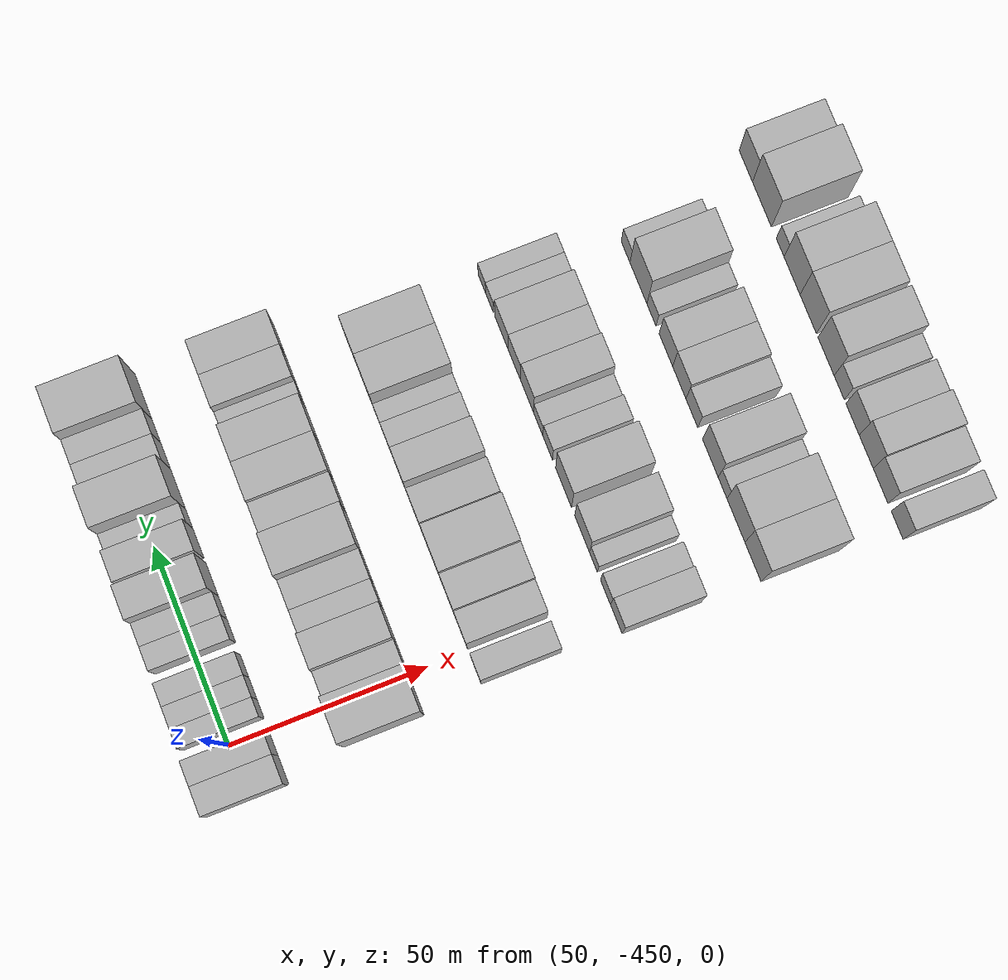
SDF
<sdf version="1.6">
 <world name="default">
  <model name="building_13">
   <static>1</static>
   <pose>50.0000 -460.0356 0 0.000000 0.000000 0.000000</pose>
   <link name="link">
    <pose>0 0 7.50 0 0 0</pose>
    <collision name="collision"><geometry><box><size>20.0000 7.2439 15.0000</size></box></geometry></collision>
    <visual name="visual">
     <cast_shadows>0</cast_shadows>
     <geometry><box><size>20.0000 7.2439 15.0000</size></box></geometry>
     <material>
      <script>
       <uri>model://HANNAS_wall/materials/scripts</uri>
       <uri>model://HANNAS_wall/materials/textures</uri>
       <name>vrc/HANNAS_wall</name>
      </script>
     </material>
    </visual>
   </link>
  </model>
  <model name="building_14">
   <static>1</static>
   <pose>50.0000 -453.3229 0 0.000000 0.000000 0.000000</pose>
   <link name="link">
    <pose>0 0 7.50 0 0 0</pose>
    <collision name="collision"><geometry><box><size>20.0000 6.1816 15.0000</size></box></geometry></collision>
    <visual name="visual">
     <cast_shadows>0</cast_shadows>
     <geometry><box><size>20.0000 6.1816 15.0000</size></box></geometry>
     <material>
      <script>
       <uri>model://HANNAS_wall/materials/scripts</uri>
       <uri>model://HANNAS_wall/materials/textures</uri>
       <name>vrc/HANNAS_wall</name>
      </script>
     </material>
    </visual>
   </link>
  </model>
  <model name="building_15">
   <static>1</static>
   <pose>50.0000 -444.8198 0 0.000000 0.000000 0.000000</pose>
   <link name="link">
    <pose>0 0 6.00 0 0 0</pose>
    <collision name="collision"><geometry><box><size>20.0000 4.8246 12.0000</size></box></geometry></collision>
    <visual name="visual">
     <cast_shadows>0</cast_shadows>
     <geometry><box><size>20.0000 4.8246 12.0000</size></box></geometry>
     <material>
      <script>
       <uri>model://HANNAS_wall/materials/scripts</uri>
       <uri>model://HANNAS_wall/materials/textures</uri>
       <name>vrc/HANNAS_wall</name>
      </script>
     </material>
    </visual>
   </link>
  </model>
  <model name="building_16">
   <static>1</static>
   <pose>50.0000 -439.6983 0 0.000000 0.000000 0.000000</pose>
   <link name="link">
    <pose>0 0 6.00 0 0 0</pose>
    <collision name="collision"><geometry><box><size>20.0000 5.4185 12.0000</size></box></geometry></collision>
    <visual name="visual">
     <cast_shadows>0</cast_shadows>
     <geometry><box><size>20.0000 5.4185 12.0000</size></box></geometry>
     <material>
      <script>
       <uri>model://HANNAS_wall/materials/scripts</uri>
       <uri>model://HANNAS_wall/materials/textures</uri>
       <name>vrc/HANNAS_wall</name>
      </script>
     </material>
    </visual>
   </link>
  </model>
  <model name="building_17">
   <static>1</static>
   <pose>50.0000 -434.1179 0 0.000000 0.000000 0.000000</pose>
   <link name="link">
    <pose>0 0 6.00 0 0 0</pose>
    <collision name="collision"><geometry><box><size>20.0000 5.7422 12.0000</size></box></geometry></collision>
    <visual name="visual">
     <cast_shadows>0</cast_shadows>
     <geometry><box><size>20.0000 5.7422 12.0000</size></box></geometry>
     <material>
      <script>
       <uri>model://HANNAS_wall/materials/scripts</uri>
       <uri>model://HANNAS_wall/materials/textures</uri>
       <name>vrc/HANNAS_wall</name>
      </script>
     </material>
    </visual>
   </link>
  </model>
  <model name="building_18">
   <static>1</static>
   <pose>50.0000 -425.2668 0 0.000000 0.000000 0.000000</pose>
   <link name="link">
    <pose>0 0 6.00 0 0 0</pose>
    <collision name="collision"><geometry><box><size>20.0000 5.9600 12.0000</size></box></geometry></collision>
    <visual name="visual">
     <cast_shadows>0</cast_shadows>
     <geometry><box><size>20.0000 5.9600 12.0000</size></box></geometry>
     <material>
      <script>
       <uri>model://HANNAS_wall/materials/scripts</uri>
       <uri>model://HANNAS_wall/materials/textures</uri>
       <name>vrc/HANNAS_wall</name>
      </script>
     </material>
    </visual>
   </link>
  </model>
  <model name="building_19">
   <static>1</static>
   <pose>50.0000 -419.3706 0 0.000000 0.000000 0.000000</pose>
   <link name="link">
    <pose>0 0 6.00 0 0 0</pose>
    <collision name="collision"><geometry><box><size>20.0000 5.8324 12.0000</size></box></geometry></collision>
    <visual name="visual">
     <cast_shadows>0</cast_shadows>
     <geometry><box><size>20.0000 5.8324 12.0000</size></box></geometry>
     <material>
      <script>
       <uri>model://HANNAS_wall/materials/scripts</uri>
       <uri>model://HANNAS_wall/materials/textures</uri>
       <name>vrc/HANNAS_wall</name>
      </script>
     </material>
    </visual>
   </link>
  </model>
  <model name="building_20">
   <static>1</static>
   <pose>50.0000 -412.1958 0 0.000000 0.000000 0.000000</pose>
   <link name="link">
    <pose>0 0 10.50 0 0 0</pose>
    <collision name="collision"><geometry><box><size>20.0000 8.5172 21.0000</size></box></geometry></collision>
    <visual name="visual">
     <cast_shadows>0</cast_shadows>
     <geometry><box><size>20.0000 8.5172 21.0000</size></box></geometry>
     <material>
      <script>
       <uri>model://HANNAS_wall/materials/scripts</uri>
       <uri>model://HANNAS_wall/materials/textures</uri>
       <name>vrc/HANNAS_wall</name>
      </script>
     </material>
    </visual>
   </link>
  </model>
  <model name="building_21">
   <static>1</static>
   <pose>50.0000 -403.0719 0 0.000000 0.000000 0.000000</pose>
   <link name="link">
    <pose>0 0 9.00 0 0 0</pose>
    <collision name="collision"><geometry><box><size>20.0000 7.7307 18.0000</size></box></geometry></collision>
    <visual name="visual">
     <cast_shadows>0</cast_shadows>
     <geometry><box><size>20.0000 7.7307 18.0000</size></box></geometry>
     <material>
      <script>
       <uri>model://HANNAS_wall/materials/scripts</uri>
       <uri>model://HANNAS_wall/materials/textures</uri>
       <name>vrc/HANNAS_wall</name>
      </script>
     </material>
    </visual>
   </link>
  </model>
  <model name="building_22">
   <static>1</static>
   <pose>50.0000 -396.7877 0 0.000000 0.000000 0.000000</pose>
   <link name="link">
    <pose>0 0 6.00 0 0 0</pose>
    <collision name="collision"><geometry><box><size>20.0000 4.8377 12.0000</size></box></geometry></collision>
    <visual name="visual">
     <cast_shadows>0</cast_shadows>
     <geometry><box><size>20.0000 4.8377 12.0000</size></box></geometry>
     <material>
      <script>
       <uri>model://HANNAS_wall/materials/scripts</uri>
       <uri>model://HANNAS_wall/materials/textures</uri>
       <name>vrc/HANNAS_wall</name>
      </script>
     </material>
    </visual>
   </link>
  </model>
  <model name="building_23">
   <static>1</static>
   <pose>50.0000 -389.2605 0 0.000000 0.000000 0.000000</pose>
   <link name="link">
    <pose>0 0 12.00 0 0 0</pose>
    <collision name="collision"><geometry><box><size>20.0000 10.2167 24.0000</size></box></geometry></collision>
    <visual name="visual">
     <cast_shadows>0</cast_shadows>
     <geometry><box><size>20.0000 10.2167 24.0000</size></box></geometry>
     <material>
      <script>
       <uri>model://HANNAS_wall/materials/scripts</uri>
       <uri>model://HANNAS_wall/materials/textures</uri>
       <name>vrc/HANNAS_wall</name>
      </script>
     </material>
    </visual>
   </link>
  </model>
  <model name="building_24">
   <static>1</static>
   <pose>50.0000 -380.7902 0 0.000000 0.000000 0.000000</pose>
   <link name="link">
    <pose>0 0 7.50 0 0 0</pose>
    <collision name="collision"><geometry><box><size>20.0000 6.7239 15.0000</size></box></geometry></collision>
    <visual name="visual">
     <cast_shadows>0</cast_shadows>
     <geometry><box><size>20.0000 6.7239 15.0000</size></box></geometry>
     <material>
      <script>
       <uri>model://HANNAS_wall/materials/scripts</uri>
       <uri>model://HANNAS_wall/materials/textures</uri>
       <name>vrc/HANNAS_wall</name>
      </script>
     </material>
    </visual>
   </link>
  </model>
  <model name="building_25">
   <static>1</static>
   <pose>50.0000 -374.2850 0 0.000000 0.000000 0.000000</pose>
   <link name="link">
    <pose>0 0 7.50 0 0 0</pose>
    <collision name="collision"><geometry><box><size>20.0000 6.2863 15.0000</size></box></geometry></collision>
    <visual name="visual">
     <cast_shadows>0</cast_shadows>
     <geometry><box><size>20.0000 6.2863 15.0000</size></box></geometry>
     <material>
      <script>
       <uri>model://HANNAS_wall/materials/scripts</uri>
       <uri>model://HANNAS_wall/materials/textures</uri>
       <name>vrc/HANNAS_wall</name>
      </script>
     </material>
    </visual>
   </link>
  </model>
  <model name="building_26">
   <static>1</static>
   <pose>50.0000 -365.3331 0 0.000000 0.000000 0.000000</pose>
   <link name="link">
    <pose>0 0 12.00 0 0 0</pose>
    <collision name="collision"><geometry><box><size>20.0000 11.6175 24.0000</size></box></geometry></collision>
    <visual name="visual">
     <cast_shadows>0</cast_shadows>
     <geometry><box><size>20.0000 11.6175 24.0000</size></box></geometry>
     <material>
      <script>
       <uri>model://HANNAS_wall/materials/scripts</uri>
       <uri>model://HANNAS_wall/materials/textures</uri>
       <name>vrc/HANNAS_wall</name>
      </script>
     </material>
    </visual>
   </link>
  </model>
  <model name="building_132">
   <static>1</static>
   <pose>85.0000 -454.5503 0 0.000000 0.000000 0.000000</pose>
   <link name="link">
    <pose>0 0 12.00 0 0 0</pose>
    <collision name="collision"><geometry><box><size>20.0000 11.3435 24.0000</size></box></geometry></collision>
    <visual name="visual">
     <cast_shadows>0</cast_shadows>
     <geometry><box><size>20.0000 11.3435 24.0000</size></box></geometry>
     <material>
      <script>
       <uri>model://HANNAS_wall/materials/scripts</uri>
       <uri>model://HANNAS_wall/materials/textures</uri>
       <name>vrc/HANNAS_wall</name>
      </script>
     </material>
    </visual>
   </link>
  </model>
  <model name="building_133">
   <static>1</static>
   <pose>85.0000 -445.5842 0 0.000000 0.000000 0.000000</pose>
   <link name="link">
    <pose>0 0 7.50 0 0 0</pose>
    <collision name="collision"><geometry><box><size>20.0000 6.5887 15.0000</size></box></geometry></collision>
    <visual name="visual">
     <cast_shadows>0</cast_shadows>
     <geometry><box><size>20.0000 6.5887 15.0000</size></box></geometry>
     <material>
      <script>
       <uri>model://HANNAS_wall/materials/scripts</uri>
       <uri>model://HANNAS_wall/materials/textures</uri>
       <name>vrc/HANNAS_wall</name>
      </script>
     </material>
    </visual>
   </link>
  </model>
  <model name="building_134">
   <static>1</static>
   <pose>85.0000 -437.9200 0 0.000000 0.000000 0.000000</pose>
   <link name="link">
    <pose>0 0 10.50 0 0 0</pose>
    <collision name="collision"><geometry><box><size>20.0000 8.7396 21.0000</size></box></geometry></collision>
    <visual name="visual">
     <cast_shadows>0</cast_shadows>
     <geometry><box><size>20.0000 8.7396 21.0000</size></box></geometry>
     <material>
      <script>
       <uri>model://HANNAS_wall/materials/scripts</uri>
       <uri>model://HANNAS_wall/materials/textures</uri>
       <name>vrc/HANNAS_wall</name>
      </script>
     </material>
    </visual>
   </link>
  </model>
  <model name="building_135">
   <static>1</static>
   <pose>85.0000 -430.4284 0 0.000000 0.000000 0.000000</pose>
   <link name="link">
    <pose>0 0 7.50 0 0 0</pose>
    <collision name="collision"><geometry><box><size>20.0000 6.2436 15.0000</size></box></geometry></collision>
    <visual name="visual">
     <cast_shadows>0</cast_shadows>
     <geometry><box><size>20.0000 6.2436 15.0000</size></box></geometry>
     <material>
      <script>
       <uri>model://HANNAS_wall/materials/scripts</uri>
       <uri>model://HANNAS_wall/materials/textures</uri>
       <name>vrc/HANNAS_wall</name>
      </script>
     </material>
    </visual>
   </link>
  </model>
  <model name="building_136">
   <static>1</static>
   <pose>85.0000 -423.5765 0 0.000000 0.000000 0.000000</pose>
   <link name="link">
    <pose>0 0 7.50 0 0 0</pose>
    <collision name="collision"><geometry><box><size>20.0000 7.4602 15.0000</size></box></geometry></collision>
    <visual name="visual">
     <cast_shadows>0</cast_shadows>
     <geometry><box><size>20.0000 7.4602 15.0000</size></box></geometry>
     <material>
      <script>
       <uri>model://HANNAS_wall/materials/scripts</uri>
       <uri>model://HANNAS_wall/materials/textures</uri>
       <name>vrc/HANNAS_wall</name>
      </script>
     </material>
    </visual>
   </link>
  </model>
  <model name="building_137">
   <static>1</static>
   <pose>85.0000 -414.6378 0 0.000000 0.000000 0.000000</pose>
   <link name="link">
    <pose>0 0 12.00 0 0 0</pose>
    <collision name="collision"><geometry><box><size>20.0000 10.4172 24.0000</size></box></geometry></collision>
    <visual name="visual">
     <cast_shadows>0</cast_shadows>
     <geometry><box><size>20.0000 10.4172 24.0000</size></box></geometry>
     <material>
      <script>
       <uri>model://HANNAS_wall/materials/scripts</uri>
       <uri>model://HANNAS_wall/materials/textures</uri>
       <name>vrc/HANNAS_wall</name>
      </script>
     </material>
    </visual>
   </link>
  </model>
  <model name="building_138">
   <static>1</static>
   <pose>85.0000 -405.3037 0 0.000000 0.000000 0.000000</pose>
   <link name="link">
    <pose>0 0 9.00 0 0 0</pose>
    <collision name="collision"><geometry><box><size>20.0000 8.2510 18.0000</size></box></geometry></collision>
    <visual name="visual">
     <cast_shadows>0</cast_shadows>
     <geometry><box><size>20.0000 8.2510 18.0000</size></box></geometry>
     <material>
      <script>
       <uri>model://HANNAS_wall/materials/scripts</uri>
       <uri>model://HANNAS_wall/materials/textures</uri>
       <name>vrc/HANNAS_wall</name>
      </script>
     </material>
    </visual>
   </link>
  </model>
  <model name="building_139">
   <static>1</static>
   <pose>85.0000 -396.3277 0 0.000000 0.000000 0.000000</pose>
   <link name="link">
    <pose>0 0 10.50 0 0 0</pose>
    <collision name="collision"><geometry><box><size>20.0000 9.7009 21.0000</size></box></geometry></collision>
    <visual name="visual">
     <cast_shadows>0</cast_shadows>
     <geometry><box><size>20.0000 9.7009 21.0000</size></box></geometry>
     <material>
      <script>
       <uri>model://HANNAS_wall/materials/scripts</uri>
       <uri>model://HANNAS_wall/materials/textures</uri>
       <name>vrc/HANNAS_wall</name>
      </script>
     </material>
    </visual>
   </link>
  </model>
  <model name="building_140">
   <static>1</static>
   <pose>85.0000 -386.8319 0 0.000000 0.000000 0.000000</pose>
   <link name="link">
    <pose>0 0 10.50 0 0 0</pose>
    <collision name="collision"><geometry><box><size>20.0000 9.2907 21.0000</size></box></geometry></collision>
    <visual name="visual">
     <cast_shadows>0</cast_shadows>
     <geometry><box><size>20.0000 9.2907 21.0000</size></box></geometry>
     <material>
      <script>
       <uri>model://HANNAS_wall/materials/scripts</uri>
       <uri>model://HANNAS_wall/materials/textures</uri>
       <name>vrc/HANNAS_wall</name>
      </script>
     </material>
    </visual>
   </link>
  </model>
  <model name="building_141">
   <static>1</static>
   <pose>85.0000 -379.7741 0 0.000000 0.000000 0.000000</pose>
   <link name="link">
    <pose>0 0 6.00 0 0 0</pose>
    <collision name="collision"><geometry><box><size>20.0000 4.8249 12.0000</size></box></geometry></collision>
    <visual name="visual">
     <cast_shadows>0</cast_shadows>
     <geometry><box><size>20.0000 4.8249 12.0000</size></box></geometry>
     <material>
      <script>
       <uri>model://HANNAS_wall/materials/scripts</uri>
       <uri>model://HANNAS_wall/materials/textures</uri>
       <name>vrc/HANNAS_wall</name>
      </script>
     </material>
    </visual>
   </link>
  </model>
  <model name="building_142">
   <static>1</static>
   <pose>85.0000 -373.2698 0 0.000000 0.000000 0.000000</pose>
   <link name="link">
    <pose>0 0 9.00 0 0 0</pose>
    <collision name="collision"><geometry><box><size>20.0000 8.1838 18.0000</size></box></geometry></collision>
    <visual name="visual">
     <cast_shadows>0</cast_shadows>
     <geometry><box><size>20.0000 8.1838 18.0000</size></box></geometry>
     <material>
      <script>
       <uri>model://HANNAS_wall/materials/scripts</uri>
       <uri>model://HANNAS_wall/materials/textures</uri>
       <name>vrc/HANNAS_wall</name>
      </script>
     </material>
    </visual>
   </link>
  </model>
  <model name="building_143">
   <static>1</static>
   <pose>85.0000 -364.7942 0 0.000000 0.000000 0.000000</pose>
   <link name="link">
    <pose>0 0 9.00 0 0 0</pose>
    <collision name="collision"><geometry><box><size>20.0000 8.7674 18.0000</size></box></geometry></collision>
    <visual name="visual">
     <cast_shadows>0</cast_shadows>
     <geometry><box><size>20.0000 8.7674 18.0000</size></box></geometry>
     <material>
      <script>
       <uri>model://HANNAS_wall/materials/scripts</uri>
       <uri>model://HANNAS_wall/materials/textures</uri>
       <name>vrc/HANNAS_wall</name>
      </script>
     </material>
    </visual>
   </link>
  </model>
  <model name="building_268">
   <static>1</static>
   <pose>120.0000 -454.9686 0 0.000000 0.000000 0.000000</pose>
   <link name="link">
    <pose>0 0 7.50 0 0 0</pose>
    <collision name="collision"><geometry><box><size>20.0000 6.7234 15.0000</size></box></geometry></collision>
    <visual name="visual">
     <cast_shadows>0</cast_shadows>
     <geometry><box><size>20.0000 6.7234 15.0000</size></box></geometry>
     <material>
      <script>
       <uri>model://HANNAS_wall/materials/scripts</uri>
       <uri>model://HANNAS_wall/materials/textures</uri>
       <name>vrc/HANNAS_wall</name>
      </script>
     </material>
    </visual>
   </link>
  </model>
  <model name="building_269">
   <static>1</static>
   <pose>120.0000 -445.6017 0 0.000000 0.000000 0.000000</pose>
   <link name="link">
    <pose>0 0 9.00 0 0 0</pose>
    <collision name="collision"><geometry><box><size>20.0000 8.0104 18.0000</size></box></geometry></collision>
    <visual name="visual">
     <cast_shadows>0</cast_shadows>
     <geometry><box><size>20.0000 8.0104 18.0000</size></box></geometry>
     <material>
      <script>
       <uri>model://HANNAS_wall/materials/scripts</uri>
       <uri>model://HANNAS_wall/materials/textures</uri>
       <name>vrc/HANNAS_wall</name>
      </script>
     </material>
    </visual>
   </link>
  </model>
  <model name="building_270">
   <static>1</static>
   <pose>120.0000 -437.1428 0 0.000000 0.000000 0.000000</pose>
   <link name="link">
    <pose>0 0 10.50 0 0 0</pose>
    <collision name="collision"><geometry><box><size>20.0000 8.9074 21.0000</size></box></geometry></collision>
    <visual name="visual">
     <cast_shadows>0</cast_shadows>
     <geometry><box><size>20.0000 8.9074 21.0000</size></box></geometry>
     <material>
      <script>
       <uri>model://HANNAS_wall/materials/scripts</uri>
       <uri>model://HANNAS_wall/materials/textures</uri>
       <name>vrc/HANNAS_wall</name>
      </script>
     </material>
    </visual>
   </link>
  </model>
  <model name="building_271">
   <static>1</static>
   <pose>120.0000 -426.8157 0 0.000000 0.000000 0.000000</pose>
   <link name="link">
    <pose>0 0 12.00 0 0 0</pose>
    <collision name="collision"><geometry><box><size>20.0000 11.7467 24.0000</size></box></geometry></collision>
    <visual name="visual">
     <cast_shadows>0</cast_shadows>
     <geometry><box><size>20.0000 11.7467 24.0000</size></box></geometry>
     <material>
      <script>
       <uri>model://HANNAS_wall/materials/scripts</uri>
       <uri>model://HANNAS_wall/materials/textures</uri>
       <name>vrc/HANNAS_wall</name>
      </script>
     </material>
    </visual>
   </link>
  </model>
  <model name="building_272">
   <static>1</static>
   <pose>120.0000 -415.6219 0 0.000000 0.000000 0.000000</pose>
   <link name="link">
    <pose>0 0 9.00 0 0 0</pose>
    <collision name="collision"><geometry><box><size>20.0000 8.6409 18.0000</size></box></geometry></collision>
    <visual name="visual">
     <cast_shadows>0</cast_shadows>
     <geometry><box><size>20.0000 8.6409 18.0000</size></box></geometry>
     <material>
      <script>
       <uri>model://HANNAS_wall/materials/scripts</uri>
       <uri>model://HANNAS_wall/materials/textures</uri>
       <name>vrc/HANNAS_wall</name>
      </script>
     </material>
    </visual>
   </link>
  </model>
  <model name="building_273">
   <static>1</static>
   <pose>120.0000 -405.9584 0 0.000000 0.000000 0.000000</pose>
   <link name="link">
    <pose>0 0 10.50 0 0 0</pose>
    <collision name="collision"><geometry><box><size>20.0000 8.6862 21.0000</size></box></geometry></collision>
    <visual name="visual">
     <cast_shadows>0</cast_shadows>
     <geometry><box><size>20.0000 8.6862 21.0000</size></box></geometry>
     <material>
      <script>
       <uri>model://HANNAS_wall/materials/scripts</uri>
       <uri>model://HANNAS_wall/materials/textures</uri>
       <name>vrc/HANNAS_wall</name>
      </script>
     </material>
    </visual>
   </link>
  </model>
  <model name="building_274">
   <static>1</static>
   <pose>120.0000 -398.0252 0 0.000000 0.000000 0.000000</pose>
   <link name="link">
    <pose>0 0 7.50 0 0 0</pose>
    <collision name="collision"><geometry><box><size>20.0000 7.1802 15.0000</size></box></geometry></collision>
    <visual name="visual">
     <cast_shadows>0</cast_shadows>
     <geometry><box><size>20.0000 7.1802 15.0000</size></box></geometry>
     <material>
      <script>
       <uri>model://HANNAS_wall/materials/scripts</uri>
       <uri>model://HANNAS_wall/materials/textures</uri>
       <name>vrc/HANNAS_wall</name>
      </script>
     </material>
    </visual>
   </link>
  </model>
  <model name="building_275">
   <static>1</static>
   <pose>120.0000 -391.7804 0 0.000000 0.000000 0.000000</pose>
   <link name="link">
    <pose>0 0 6.00 0 0 0</pose>
    <collision name="collision"><geometry><box><size>20.0000 5.3094 12.0000</size></box></geometry></collision>
    <visual name="visual">
     <cast_shadows>0</cast_shadows>
     <geometry><box><size>20.0000 5.3094 12.0000</size></box></geometry>
     <material>
      <script>
       <uri>model://HANNAS_wall/materials/scripts</uri>
       <uri>model://HANNAS_wall/materials/textures</uri>
       <name>vrc/HANNAS_wall</name>
      </script>
     </material>
    </visual>
   </link>
  </model>
  <model name="building_276">
   <static>1</static>
   <pose>120.0000 -384.0562 0 0.000000 0.000000 0.000000</pose>
   <link name="link">
    <pose>0 0 12.00 0 0 0</pose>
    <collision name="collision"><geometry><box><size>20.0000 10.1391 24.0000</size></box></geometry></collision>
    <visual name="visual">
     <cast_shadows>0</cast_shadows>
     <geometry><box><size>20.0000 10.1391 24.0000</size></box></geometry>
     <material>
      <script>
       <uri>model://HANNAS_wall/materials/scripts</uri>
       <uri>model://HANNAS_wall/materials/textures</uri>
       <name>vrc/HANNAS_wall</name>
      </script>
     </material>
    </visual>
   </link>
  </model>
  <model name="building_277">
   <static>1</static>
   <pose>120.0000 -374.1799 0 0.000000 0.000000 0.000000</pose>
   <link name="link">
    <pose>0 0 12.00 0 0 0</pose>
    <collision name="collision"><geometry><box><size>20.0000 9.6134 24.0000</size></box></geometry></collision>
    <visual name="visual">
     <cast_shadows>0</cast_shadows>
     <geometry><box><size>20.0000 9.6134 24.0000</size></box></geometry>
     <material>
      <script>
       <uri>model://HANNAS_wall/materials/scripts</uri>
       <uri>model://HANNAS_wall/materials/textures</uri>
       <name>vrc/HANNAS_wall</name>
      </script>
     </material>
    </visual>
   </link>
  </model>
  <model name="building_395">
   <static>1</static>
   <pose>155.0000 -455.8413 0 0.000000 0.000000 0.000000</pose>
   <link name="link">
    <pose>0 0 9.00 0 0 0</pose>
    <collision name="collision"><geometry><box><size>20.0000 7.2951 18.0000</size></box></geometry></collision>
    <visual name="visual">
     <cast_shadows>0</cast_shadows>
     <geometry><box><size>20.0000 7.2951 18.0000</size></box></geometry>
     <material>
      <script>
       <uri>model://HANNAS_wall/materials/scripts</uri>
       <uri>model://HANNAS_wall/materials/textures</uri>
       <name>vrc/HANNAS_wall</name>
      </script>
     </material>
    </visual>
   </link>
  </model>
  <model name="building_396">
   <static>1</static>
   <pose>155.0000 -449.0101 0 0.000000 0.000000 0.000000</pose>
   <link name="link">
    <pose>0 0 7.50 0 0 0</pose>
    <collision name="collision"><geometry><box><size>20.0000 6.3673 15.0000</size></box></geometry></collision>
    <visual name="visual">
     <cast_shadows>0</cast_shadows>
     <geometry><box><size>20.0000 6.3673 15.0000</size></box></geometry>
     <material>
      <script>
       <uri>model://HANNAS_wall/materials/scripts</uri>
       <uri>model://HANNAS_wall/materials/textures</uri>
       <name>vrc/HANNAS_wall</name>
      </script>
     </material>
    </visual>
   </link>
  </model>
  <model name="building_397">
   <static>1</static>
   <pose>155.0000 -441.3222 0 0.000000 0.000000 0.000000</pose>
   <link name="link">
    <pose>0 0 6.00 0 0 0</pose>
    <collision name="collision"><geometry><box><size>20.0000 5.0085 12.0000</size></box></geometry></collision>
    <visual name="visual">
     <cast_shadows>0</cast_shadows>
     <geometry><box><size>20.0000 5.0085 12.0000</size></box></geometry>
     <material>
      <script>
       <uri>model://HANNAS_wall/materials/scripts</uri>
       <uri>model://HANNAS_wall/materials/textures</uri>
       <name>vrc/HANNAS_wall</name>
      </script>
     </material>
    </visual>
   </link>
  </model>
  <model name="building_398">
   <static>1</static>
   <pose>155.0000 -434.1032 0 0.000000 0.000000 0.000000</pose>
   <link name="link">
    <pose>0 0 10.50 0 0 0</pose>
    <collision name="collision"><geometry><box><size>20.0000 9.4295 21.0000</size></box></geometry></collision>
    <visual name="visual">
     <cast_shadows>0</cast_shadows>
     <geometry><box><size>20.0000 9.4295 21.0000</size></box></geometry>
     <material>
      <script>
       <uri>model://HANNAS_wall/materials/scripts</uri>
       <uri>model://HANNAS_wall/materials/textures</uri>
       <name>vrc/HANNAS_wall</name>
      </script>
     </material>
    </visual>
   </link>
  </model>
  <model name="building_399">
   <static>1</static>
   <pose>155.0000 -422.2895 0 0.000000 0.000000 0.000000</pose>
   <link name="link">
    <pose>0 0 12.00 0 0 0</pose>
    <collision name="collision"><geometry><box><size>20.0000 10.1981 24.0000</size></box></geometry></collision>
    <visual name="visual">
     <cast_shadows>0</cast_shadows>
     <geometry><box><size>20.0000 10.1981 24.0000</size></box></geometry>
     <material>
      <script>
       <uri>model://HANNAS_wall/materials/scripts</uri>
       <uri>model://HANNAS_wall/materials/textures</uri>
       <name>vrc/HANNAS_wall</name>
      </script>
     </material>
    </visual>
   </link>
  </model>
  <model name="building_400">
   <static>1</static>
   <pose>155.0000 -412.1031 0 0.000000 0.000000 0.000000</pose>
   <link name="link">
    <pose>0 0 7.50 0 0 0</pose>
    <collision name="collision"><geometry><box><size>20.0000 6.1747 15.0000</size></box></geometry></collision>
    <visual name="visual">
     <cast_shadows>0</cast_shadows>
     <geometry><box><size>20.0000 6.1747 15.0000</size></box></geometry>
     <material>
      <script>
       <uri>model://HANNAS_wall/materials/scripts</uri>
       <uri>model://HANNAS_wall/materials/textures</uri>
       <name>vrc/HANNAS_wall</name>
      </script>
     </material>
    </visual>
   </link>
  </model>
  <model name="building_401">
   <static>1</static>
   <pose>155.0000 -406.0299 0 0.000000 0.000000 0.000000</pose>
   <link name="link">
    <pose>0 0 6.00 0 0 0</pose>
    <collision name="collision"><geometry><box><size>20.0000 5.9715 12.0000</size></box></geometry></collision>
    <visual name="visual">
     <cast_shadows>0</cast_shadows>
     <geometry><box><size>20.0000 5.9715 12.0000</size></box></geometry>
     <material>
      <script>
       <uri>model://HANNAS_wall/materials/scripts</uri>
       <uri>model://HANNAS_wall/materials/textures</uri>
       <name>vrc/HANNAS_wall</name>
      </script>
     </material>
    </visual>
   </link>
  </model>
  <model name="building_402">
   <static>1</static>
   <pose>155.0000 -398.8384 0 0.000000 0.000000 0.000000</pose>
   <link name="link">
    <pose>0 0 10.50 0 0 0</pose>
    <collision name="collision"><geometry><box><size>20.0000 8.4115 21.0000</size></box></geometry></collision>
    <visual name="visual">
     <cast_shadows>0</cast_shadows>
     <geometry><box><size>20.0000 8.4115 21.0000</size></box></geometry>
     <material>
      <script>
       <uri>model://HANNAS_wall/materials/scripts</uri>
       <uri>model://HANNAS_wall/materials/textures</uri>
       <name>vrc/HANNAS_wall</name>
      </script>
     </material>
    </visual>
   </link>
  </model>
  <model name="building_403">
   <static>1</static>
   <pose>155.0000 -390.6266 0 0.000000 0.000000 0.000000</pose>
   <link name="link">
    <pose>0 0 9.00 0 0 0</pose>
    <collision name="collision"><geometry><box><size>20.0000 8.0121 18.0000</size></box></geometry></collision>
    <visual name="visual">
     <cast_shadows>0</cast_shadows>
     <geometry><box><size>20.0000 8.0121 18.0000</size></box></geometry>
     <material>
      <script>
       <uri>model://HANNAS_wall/materials/scripts</uri>
       <uri>model://HANNAS_wall/materials/textures</uri>
       <name>vrc/HANNAS_wall</name>
      </script>
     </material>
    </visual>
   </link>
  </model>
  <model name="building_404">
   <static>1</static>
   <pose>155.0000 -382.2199 0 0.000000 0.000000 0.000000</pose>
   <link name="link">
    <pose>0 0 9.00 0 0 0</pose>
    <collision name="collision"><geometry><box><size>20.0000 8.8012 18.0000</size></box></geometry></collision>
    <visual name="visual">
     <cast_shadows>0</cast_shadows>
     <geometry><box><size>20.0000 8.8012 18.0000</size></box></geometry>
     <material>
      <script>
       <uri>model://HANNAS_wall/materials/scripts</uri>
       <uri>model://HANNAS_wall/materials/textures</uri>
       <name>vrc/HANNAS_wall</name>
      </script>
     </material>
    </visual>
   </link>
  </model>
  <model name="building_405">
   <static>1</static>
   <pose>155.0000 -374.3476 0 0.000000 0.000000 0.000000</pose>
   <link name="link">
    <pose>0 0 6.00 0 0 0</pose>
    <collision name="collision"><geometry><box><size>20.0000 4.9435 12.0000</size></box></geometry></collision>
    <visual name="visual">
     <cast_shadows>0</cast_shadows>
     <geometry><box><size>20.0000 4.9435 12.0000</size></box></geometry>
     <material>
      <script>
       <uri>model://HANNAS_wall/materials/scripts</uri>
       <uri>model://HANNAS_wall/materials/textures</uri>
       <name>vrc/HANNAS_wall</name>
      </script>
     </material>
    </visual>
   </link>
  </model>
  <model name="building_406">
   <static>1</static>
   <pose>155.0000 -369.3794 0 0.000000 0.000000 0.000000</pose>
   <link name="link">
    <pose>0 0 6.00 0 0 0</pose>
    <collision name="collision"><geometry><box><size>20.0000 4.9929 12.0000</size></box></geometry></collision>
    <visual name="visual">
     <cast_shadows>0</cast_shadows>
     <geometry><box><size>20.0000 4.9929 12.0000</size></box></geometry>
     <material>
      <script>
       <uri>model://HANNAS_wall/materials/scripts</uri>
       <uri>model://HANNAS_wall/materials/textures</uri>
       <name>vrc/HANNAS_wall</name>
      </script>
     </material>
    </visual>
   </link>
  </model>
  <model name="building_523">
   <static>1</static>
   <pose>190.0000 -455.1067 0 0.000000 0.000000 0.000000</pose>
   <link name="link">
    <pose>0 0 12.00 0 0 0</pose>
    <collision name="collision"><geometry><box><size>20.0000 9.9626 24.0000</size></box></geometry></collision>
    <visual name="visual">
     <cast_shadows>0</cast_shadows>
     <geometry><box><size>20.0000 9.9626 24.0000</size></box></geometry>
     <material>
      <script>
       <uri>model://HANNAS_wall/materials/scripts</uri>
       <uri>model://HANNAS_wall/materials/textures</uri>
       <name>vrc/HANNAS_wall</name>
      </script>
     </material>
    </visual>
   </link>
  </model>
  <model name="building_524">
   <static>1</static>
   <pose>190.0000 -444.5082 0 0.000000 0.000000 0.000000</pose>
   <link name="link">
    <pose>0 0 12.00 0 0 0</pose>
    <collision name="collision"><geometry><box><size>20.0000 11.2344 24.0000</size></box></geometry></collision>
    <visual name="visual">
     <cast_shadows>0</cast_shadows>
     <geometry><box><size>20.0000 11.2344 24.0000</size></box></geometry>
     <material>
      <script>
       <uri>model://HANNAS_wall/materials/scripts</uri>
       <uri>model://HANNAS_wall/materials/textures</uri>
       <name>vrc/HANNAS_wall</name>
      </script>
     </material>
    </visual>
   </link>
  </model>
  <model name="building_525">
   <static>1</static>
   <pose>190.0000 -436.1556 0 0.000000 0.000000 0.000000</pose>
   <link name="link">
    <pose>0 0 6.00 0 0 0</pose>
    <collision name="collision"><geometry><box><size>20.0000 5.4707 12.0000</size></box></geometry></collision>
    <visual name="visual">
     <cast_shadows>0</cast_shadows>
     <geometry><box><size>20.0000 5.4707 12.0000</size></box></geometry>
     <material>
      <script>
       <uri>model://HANNAS_wall/materials/scripts</uri>
       <uri>model://HANNAS_wall/materials/textures</uri>
       <name>vrc/HANNAS_wall</name>
      </script>
     </material>
    </visual>
   </link>
  </model>
  <model name="building_526">
   <static>1</static>
   <pose>190.0000 -428.5125 0 0.000000 0.000000 0.000000</pose>
   <link name="link">
    <pose>0 0 10.50 0 0 0</pose>
    <collision name="collision"><geometry><box><size>20.0000 9.8155 21.0000</size></box></geometry></collision>
    <visual name="visual">
     <cast_shadows>0</cast_shadows>
     <geometry><box><size>20.0000 9.8155 21.0000</size></box></geometry>
     <material>
      <script>
       <uri>model://HANNAS_wall/materials/scripts</uri>
       <uri>model://HANNAS_wall/materials/textures</uri>
       <name>vrc/HANNAS_wall</name>
      </script>
     </material>
    </visual>
   </link>
  </model>
  <model name="building_527">
   <static>1</static>
   <pose>190.0000 -416.8904 0 0.000000 0.000000 0.000000</pose>
   <link name="link">
    <pose>0 0 7.50 0 0 0</pose>
    <collision name="collision"><geometry><box><size>20.0000 7.4289 15.0000</size></box></geometry></collision>
    <visual name="visual">
     <cast_shadows>0</cast_shadows>
     <geometry><box><size>20.0000 7.4289 15.0000</size></box></geometry>
     <material>
      <script>
       <uri>model://HANNAS_wall/materials/scripts</uri>
       <uri>model://HANNAS_wall/materials/textures</uri>
       <name>vrc/HANNAS_wall</name>
      </script>
     </material>
    </visual>
   </link>
  </model>
  <model name="building_528">
   <static>1</static>
   <pose>190.0000 -408.9555 0 0.000000 0.000000 0.000000</pose>
   <link name="link">
    <pose>0 0 9.00 0 0 0</pose>
    <collision name="collision"><geometry><box><size>20.0000 8.4409 18.0000</size></box></geometry></collision>
    <visual name="visual">
     <cast_shadows>0</cast_shadows>
     <geometry><box><size>20.0000 8.4409 18.0000</size></box></geometry>
     <material>
      <script>
       <uri>model://HANNAS_wall/materials/scripts</uri>
       <uri>model://HANNAS_wall/materials/textures</uri>
       <name>vrc/HANNAS_wall</name>
      </script>
     </material>
    </visual>
   </link>
  </model>
  <model name="building_529">
   <static>1</static>
   <pose>190.0000 -400.4259 0 0.000000 0.000000 0.000000</pose>
   <link name="link">
    <pose>0 0 9.00 0 0 0</pose>
    <collision name="collision"><geometry><box><size>20.0000 8.6181 18.0000</size></box></geometry></collision>
    <visual name="visual">
     <cast_shadows>0</cast_shadows>
     <geometry><box><size>20.0000 8.6181 18.0000</size></box></geometry>
     <material>
      <script>
       <uri>model://HANNAS_wall/materials/scripts</uri>
       <uri>model://HANNAS_wall/materials/textures</uri>
       <name>vrc/HANNAS_wall</name>
      </script>
     </material>
    </visual>
   </link>
  </model>
  <model name="building_530">
   <static>1</static>
   <pose>190.0000 -391.2185 0 0.000000 0.000000 0.000000</pose>
   <link name="link">
    <pose>0 0 6.00 0 0 0</pose>
    <collision name="collision"><geometry><box><size>20.0000 5.7968 12.0000</size></box></geometry></collision>
    <visual name="visual">
     <cast_shadows>0</cast_shadows>
     <geometry><box><size>20.0000 5.7968 12.0000</size></box></geometry>
     <material>
      <script>
       <uri>model://HANNAS_wall/materials/scripts</uri>
       <uri>model://HANNAS_wall/materials/textures</uri>
       <name>vrc/HANNAS_wall</name>
      </script>
     </material>
    </visual>
   </link>
  </model>
  <model name="building_531">
   <static>1</static>
   <pose>190.0000 -382.8961 0 0.000000 0.000000 0.000000</pose>
   <link name="link">
    <pose>0 0 12.00 0 0 0</pose>
    <collision name="collision"><geometry><box><size>20.0000 10.8479 24.0000</size></box></geometry></collision>
    <visual name="visual">
     <cast_shadows>0</cast_shadows>
     <geometry><box><size>20.0000 10.8479 24.0000</size></box></geometry>
     <material>
      <script>
       <uri>model://HANNAS_wall/materials/scripts</uri>
       <uri>model://HANNAS_wall/materials/textures</uri>
       <name>vrc/HANNAS_wall</name>
      </script>
     </material>
    </visual>
   </link>
  </model>
  <model name="building_532">
   <static>1</static>
   <pose>190.0000 -374.6468 0 0.000000 0.000000 0.000000</pose>
   <link name="link">
    <pose>0 0 6.00 0 0 0</pose>
    <collision name="collision"><geometry><box><size>20.0000 5.6508 12.0000</size></box></geometry></collision>
    <visual name="visual">
     <cast_shadows>0</cast_shadows>
     <geometry><box><size>20.0000 5.6508 12.0000</size></box></geometry>
     <material>
      <script>
       <uri>model://HANNAS_wall/materials/scripts</uri>
       <uri>model://HANNAS_wall/materials/textures</uri>
       <name>vrc/HANNAS_wall</name>
      </script>
     </material>
    </visual>
   </link>
  </model>
  <model name="building_648">
   <static>1</static>
   <pose>225.0000 -459.5346 0 0.000000 0.000000 0.000000</pose>
   <link name="link">
    <pose>0 0 9.00 0 0 0</pose>
    <collision name="collision"><geometry><box><size>20.0000 7.2175 18.0000</size></box></geometry></collision>
    <visual name="visual">
     <cast_shadows>0</cast_shadows>
     <geometry><box><size>20.0000 7.2175 18.0000</size></box></geometry>
     <material>
      <script>
       <uri>model://HANNAS_wall/materials/scripts</uri>
       <uri>model://HANNAS_wall/materials/textures</uri>
       <name>vrc/HANNAS_wall</name>
      </script>
     </material>
    </visual>
   </link>
  </model>
  <model name="building_649">
   <static>1</static>
   <pose>225.0000 -449.4530 0 0.000000 0.000000 0.000000</pose>
   <link name="link">
    <pose>0 0 9.00 0 0 0</pose>
    <collision name="collision"><geometry><box><size>20.0000 8.9457 18.0000</size></box></geometry></collision>
    <visual name="visual">
     <cast_shadows>0</cast_shadows>
     <geometry><box><size>20.0000 8.9457 18.0000</size></box></geometry>
     <material>
      <script>
       <uri>model://HANNAS_wall/materials/scripts</uri>
       <uri>model://HANNAS_wall/materials/textures</uri>
       <name>vrc/HANNAS_wall</name>
      </script>
     </material>
    </visual>
   </link>
  </model>
  <model name="building_650">
   <static>1</static>
   <pose>225.0000 -440.6863 0 0.000000 0.000000 0.000000</pose>
   <link name="link">
    <pose>0 0 10.50 0 0 0</pose>
    <collision name="collision"><geometry><box><size>20.0000 8.5877 21.0000</size></box></geometry></collision>
    <visual name="visual">
     <cast_shadows>0</cast_shadows>
     <geometry><box><size>20.0000 8.5877 21.0000</size></box></geometry>
     <material>
      <script>
       <uri>model://HANNAS_wall/materials/scripts</uri>
       <uri>model://HANNAS_wall/materials/textures</uri>
       <name>vrc/HANNAS_wall</name>
      </script>
     </material>
    </visual>
   </link>
  </model>
  <model name="building_651">
   <static>1</static>
   <pose>225.0000 -432.2957 0 0.000000 0.000000 0.000000</pose>
   <link name="link">
    <pose>0 0 9.00 0 0 0</pose>
    <collision name="collision"><geometry><box><size>20.0000 8.1936 18.0000</size></box></geometry></collision>
    <visual name="visual">
     <cast_shadows>0</cast_shadows>
     <geometry><box><size>20.0000 8.1936 18.0000</size></box></geometry>
     <material>
      <script>
       <uri>model://HANNAS_wall/materials/scripts</uri>
       <uri>model://HANNAS_wall/materials/textures</uri>
       <name>vrc/HANNAS_wall</name>
      </script>
     </material>
    </visual>
   </link>
  </model>
  <model name="building_652">
   <static>1</static>
   <pose>225.0000 -424.0733 0 0.000000 0.000000 0.000000</pose>
   <link name="link">
    <pose>0 0 7.50 0 0 0</pose>
    <collision name="collision"><geometry><box><size>20.0000 6.2512 15.0000</size></box></geometry></collision>
    <visual name="visual">
     <cast_shadows>0</cast_shadows>
     <geometry><box><size>20.0000 6.2512 15.0000</size></box></geometry>
     <material>
      <script>
       <uri>model://HANNAS_wall/materials/scripts</uri>
       <uri>model://HANNAS_wall/materials/textures</uri>
       <name>vrc/HANNAS_wall</name>
      </script>
     </material>
    </visual>
   </link>
  </model>
  <model name="building_653">
   <static>1</static>
   <pose>225.0000 -415.9384 0 0.000000 0.000000 0.000000</pose>
   <link name="link">
    <pose>0 0 12.00 0 0 0</pose>
    <collision name="collision"><geometry><box><size>20.0000 10.0186 24.0000</size></box></geometry></collision>
    <visual name="visual">
     <cast_shadows>0</cast_shadows>
     <geometry><box><size>20.0000 10.0186 24.0000</size></box></geometry>
     <material>
      <script>
       <uri>model://HANNAS_wall/materials/scripts</uri>
       <uri>model://HANNAS_wall/materials/textures</uri>
       <name>vrc/HANNAS_wall</name>
      </script>
     </material>
    </visual>
   </link>
  </model>
  <model name="building_654">
   <static>1</static>
   <pose>225.0000 -404.8217 0 0.000000 0.000000 0.000000</pose>
   <link name="link">
    <pose>0 0 12.00 0 0 0</pose>
    <collision name="collision"><geometry><box><size>20.0000 10.2148 24.0000</size></box></geometry></collision>
    <visual name="visual">
     <cast_shadows>0</cast_shadows>
     <geometry><box><size>20.0000 10.2148 24.0000</size></box></geometry>
     <material>
      <script>
       <uri>model://HANNAS_wall/materials/scripts</uri>
       <uri>model://HANNAS_wall/materials/textures</uri>
       <name>vrc/HANNAS_wall</name>
      </script>
     </material>
    </visual>
   </link>
  </model>
  <model name="building_655">
   <static>1</static>
   <pose>225.0000 -394.7193 0 0.000000 0.000000 0.000000</pose>
   <link name="link">
    <pose>0 0 12.00 0 0 0</pose>
    <collision name="collision"><geometry><box><size>20.0000 9.9899 24.0000</size></box></geometry></collision>
    <visual name="visual">
     <cast_shadows>0</cast_shadows>
     <geometry><box><size>20.0000 9.9899 24.0000</size></box></geometry>
     <material>
      <script>
       <uri>model://HANNAS_wall/materials/scripts</uri>
       <uri>model://HANNAS_wall/materials/textures</uri>
       <name>vrc/HANNAS_wall</name>
      </script>
     </material>
    </visual>
   </link>
  </model>
  <model name="building_656">
   <static>1</static>
   <pose>225.0000 -387.2579 0 0.000000 0.000000 0.000000</pose>
   <link name="link">
    <pose>0 0 6.00 0 0 0</pose>
    <collision name="collision"><geometry><box><size>20.0000 4.9329 12.0000</size></box></geometry></collision>
    <visual name="visual">
     <cast_shadows>0</cast_shadows>
     <geometry><box><size>20.0000 4.9329 12.0000</size></box></geometry>
     <material>
      <script>
       <uri>model://HANNAS_wall/materials/scripts</uri>
       <uri>model://HANNAS_wall/materials/textures</uri>
       <name>vrc/HANNAS_wall</name>
      </script>
     </material>
    </visual>
   </link>
  </model>
  <model name="building_657">
   <static>1</static>
   <pose>225.0000 -375.7953 0 0.000000 0.000000 0.000000</pose>
   <link name="link">
    <pose>0 0 12.00 0 0 0</pose>
    <collision name="collision"><geometry><box><size>20.0000 11.9925 24.0000</size></box></geometry></collision>
    <visual name="visual">
     <cast_shadows>0</cast_shadows>
     <geometry><box><size>20.0000 11.9925 24.0000</size></box></geometry>
     <material>
      <script>
       <uri>model://HANNAS_wall/materials/scripts</uri>
       <uri>model://HANNAS_wall/materials/textures</uri>
       <name>vrc/HANNAS_wall</name>
      </script>
     </material>
    </visual>
   </link>
  </model>
  <model name="building_658">
   <static>1</static>
   <pose>225.0000 -365.5565 0 0.000000 0.000000 0.000000</pose>
   <link name="link">
    <pose>0 0 9.00 0 0 0</pose>
    <collision name="collision"><geometry><box><size>20.0000 8.4850 18.0000</size></box></geometry></collision>
    <visual name="visual">
     <cast_shadows>0</cast_shadows>
     <geometry><box><size>20.0000 8.4850 18.0000</size></box></geometry>
     <material>
      <script>
       <uri>model://HANNAS_wall/materials/scripts</uri>
       <uri>model://HANNAS_wall/materials/textures</uri>
       <name>vrc/HANNAS_wall</name>
      </script>
     </material>
    </visual>
   </link>
  </model>
 </world>
</sdf>
